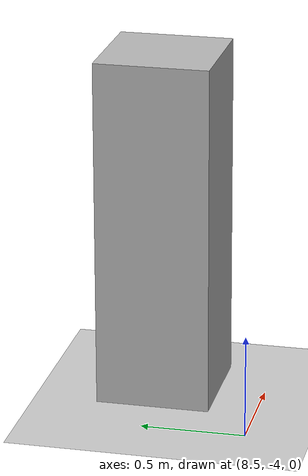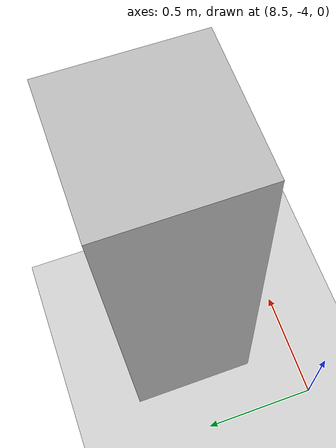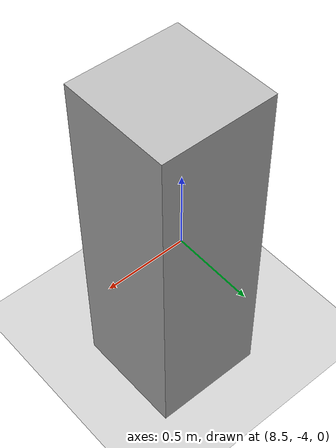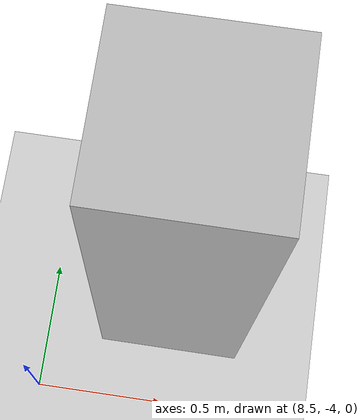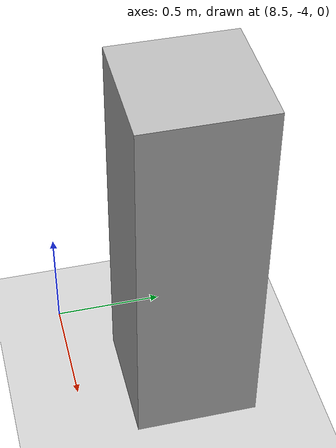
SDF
<?xml version="1.0"?>
<sdf version="1.6">
  <world name="v2-04g-r5-readiness-dynamic-conflict-s5112">
    <gravity>0 0 -9.81</gravity>
    <physics name="v2_deterministic" type="ode">
      <max_step_size>0.002</max_step_size>
      <real_time_update_rate>500</real_time_update_rate>
    </physics>
    <include>
      <uri>model://sun</uri>
    </include>
    <include>
      <uri>model://ground_plane</uri>
    </include>
    <model name="crossing-agent">
      <static>true</static>
      <pose>9.000000000 -3.500000000 0.850000000 0 0 1.570796327</pose>
      <link name="link">
        <collision name="collision">
          <geometry>
            <box>
              <size>0.550000 0.550000 1.700000</size>
            </box>
          </geometry>
        </collision>
        <visual name="visual">
          <geometry>
            <box>
              <size>0.550000 0.550000 1.700000</size>
            </box>
          </geometry>
        </visual>
      </link>
      <plugin name="crossing-agent_trajectory" filename="libv2_trajectory_actor_plugin.so">
        <loop>false</loop>
        <z>0.850000</z>
        <waypoint>
          <time>9.036578362</time>
          <x>9.000000000</x>
          <y>-3.500000000</y>
          <yaw>1.570796327</yaw>
        </waypoint>
        <waypoint>
          <time>17.036578362</time>
          <x>9.000000000</x>
          <y>3.500000000</y>
          <yaw>1.570796327</yaw>
        </waypoint>
      </plugin>
    </model>
  </world>
</sdf>
